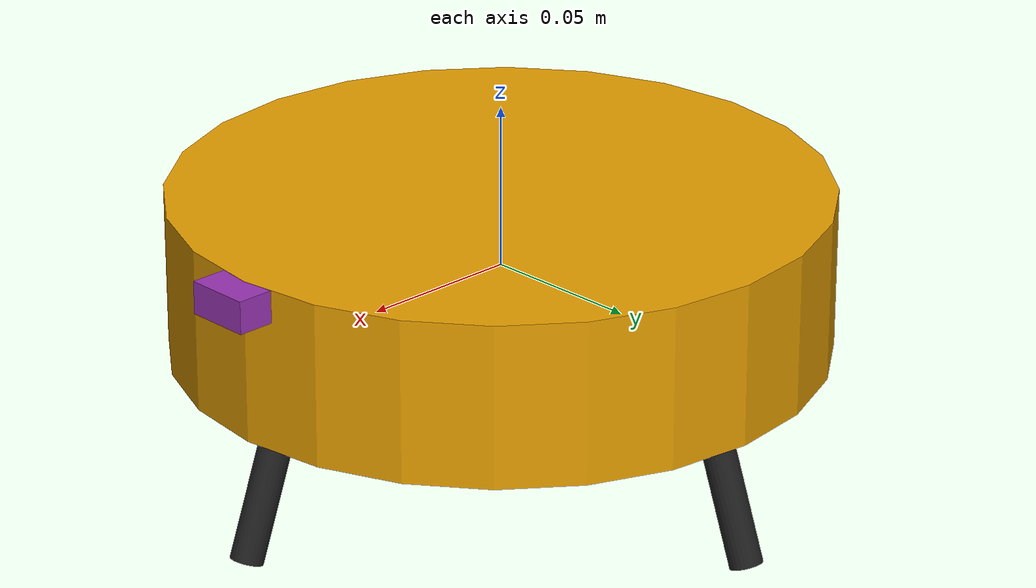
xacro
<?xml version='1.0'?>
<robot name="robot" xmlns:xacro="http://www.ros.org/wiki/xacro">
<xacro:property name="camera_width" value="0.02"/>
<xacro:property name="camera_length" value="0.02"/>
<xacro:property name="camera_height" value="0.01"/>
<xacro:property name="chassis_height" value="0.05"/>
<xacro:property name="chassis_radius" value="0.1"/>
<xacro:property name="leg_radius"  value="0.005"/>
<xacro:property name="leg_length"  value="0.04"/>

<xacro:property name="camera_mass" value="0.01"/>
<xacro:property name="leg_mass" value="0.01"/>
<xacro:property name="chassis_mass" value="19.95"/>

<xacro:include filename="$(find robbie)/urdf/macros.xacro"/>

<link name='chassis'>
  <xacro:cylinder_inertial name="chassis" m="${chassis_mass}" r="${chassis_radius}" h="${chassis_height}"/>
  <collision name='chassis_collision'>
    <geometry>
      <cylinder radius="${chassis_radius}" length="${chassis_height}"/>
    </geometry>
  </collision>
  <visual name='chassis_visual'>
    <origin xyz="0 0 0" rpy="0 0 0"/>
    <geometry>
      <cylinder radius="${chassis_radius}" length="${chassis_height}"/>
    </geometry>
  </visual>
</link>

<gazebo>
  <plugin name="chassis" filename="libgazebo_ros_force.so">
    <bodyName>chassis</bodyName>
    <topicName>/B1/cmd_force</topicName>
  </plugin>
</gazebo>
<gazebo reference="chassis">
  <enable_wind>true</enable_wind>
</gazebo>

<link name='camera_link'>
  <xacro:box_inertial name="camera_link" m="${camera_mass}" x="${camera_width}" y="${camera_length}" z="${camera_height}"/>
  <collision name='camera_link_collision'>
    <geometry>
      <box size="${camera_length} ${camera_width} ${camera_height}"/>
    </geometry>
  </collision>
  <visual name='camera_link_visual'>
    <origin xyz="0 0 0" rpy="0 0 0"/>
    <geometry>
      <box size="${camera_length} ${camera_width} ${camera_height}"/>
    </geometry>
  </visual>
</link>
<joint name="camera_joint" type="fixed">
  <parent link="chassis"/>
  <child link="camera_link"/>
  <origin xyz="${chassis_radius} 0 ${chassis_height/2 - camera_height/2 - 0.0001}"/>
</joint>
<gazebo reference="camera_link">
  <sensor type="camera" name="camera1">
    <update_rate>30.0</update_rate>
    <camera name="head">
      <horizontal_fov>2.094395</horizontal_fov>
      <image>
        <width>3840</width>
        <height>2160</height>
        <format>R8G8B8</format>
      </image>
      <clip>
        <near>0.02</near>
        <far>300</far>
      </clip>
      <noise>
        <type>gaussian</type>
        <mean>0.0</mean>
        <stddev>0.007</stddev>
      </noise>
    </camera>
    <plugin name="camera_controller" filename="libgazebo_ros_camera.so">
      <alwaysOn>true</alwaysOn>
      <updateRate>0.0</updateRate>
      <cameraName>rrbot/camera1</cameraName>
      <imageTopicName>image_raw</imageTopicName>
      <cameraInfoTopicName>camera_info</cameraInfoTopicName>
      <frameName>camera_link</frameName>
      <hackBaseline>0.07</hackBaseline>
      <distortionK1>0.0</distortionK1>
      <distortionK2>0.0</distortionK2>
      <distortionK3>0.0</distortionK3>
      <distortionT1>0.0</distortionT1>
      <distortionT2>0.0</distortionT2>
    </plugin>
  </sensor>
</gazebo>

<xacro:macro name="landing_leg" params="name angle">
  <link name="leg_${name}">
    <xacro:cylinder_inertial name="leg_${name}" m="${leg_mass}" r="${leg_radius}" h="${leg_length}"/>
    <collision name="leg_${name}_collision">
      <geometry>
        <cylinder radius="${leg_radius}" length="${leg_length}"/>
      </geometry>
    </collision>
    <visual name="leg_${name}_visual">
      <origin xyz="0 0 0" rpy="0 0 0"/>
      <geometry>
        <cylinder radius="${leg_radius}" length="${leg_length}"/>
      </geometry>
    </visual>
  </link>
  <joint name="leg_${name}_joint" type="fixed">
    <parent link="chassis"/>
    <child link="leg_${name}"/>
    <origin xyz="${cos(radians(angle)) * (chassis_radius - leg_radius)}
                 ${sin(radians(angle)) * (chassis_radius - leg_radius)}
                 ${-(chassis_height/2) - (leg_length/2) * cos(0.349)}"
            rpy="${sin(radians(angle)) * 0.349} ${-cos(radians(angle)) * 0.349} 0"/>
  </joint>
</xacro:macro>

<xacro:landing_leg name="front"  angle="0"/>
<xacro:landing_leg name="left"   angle="90"/>
<xacro:landing_leg name="back"   angle="180"/>
<xacro:landing_leg name="right"  angle="270"/>

<gazebo reference="camera_link">
  <material>Gazebo/Purple</material>
</gazebo>
<gazebo reference="leg_front">
  <material>Gazebo/Black</material>
</gazebo>
<gazebo reference="leg_left">
  <material>Gazebo/Black</material>
</gazebo>
<gazebo reference="leg_back">
  <material>Gazebo/Black</material>
</gazebo>
<gazebo reference="leg_right">
  <material>Gazebo/Black</material>
</gazebo>

</robot>
